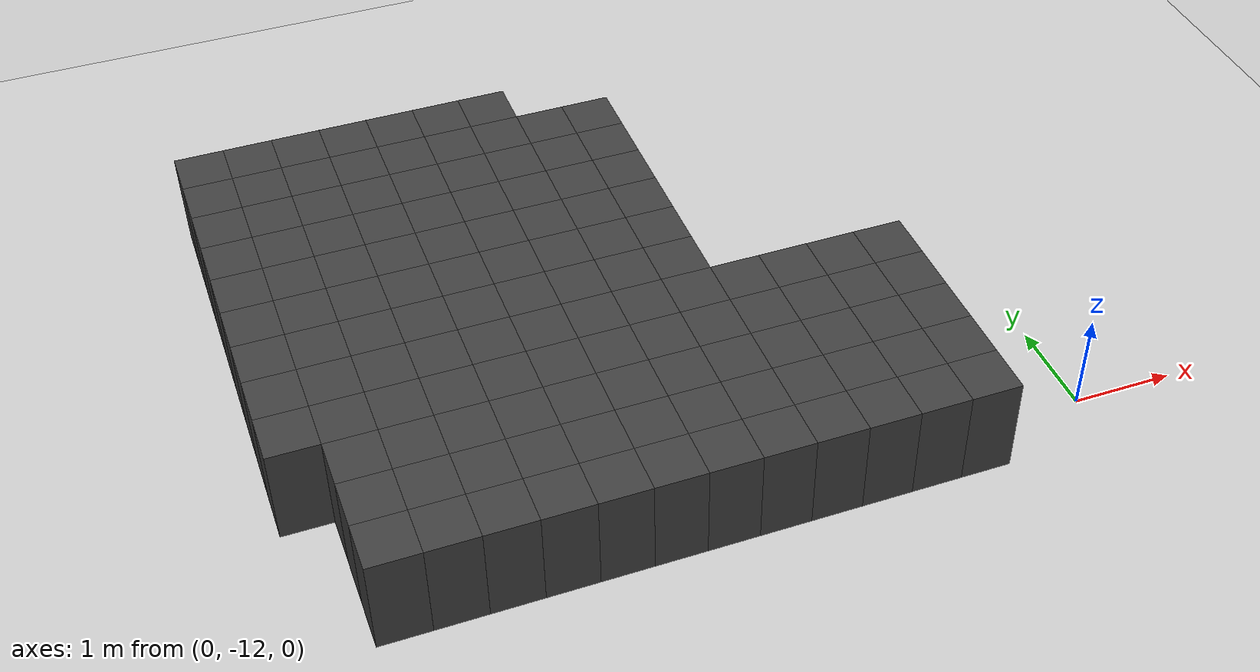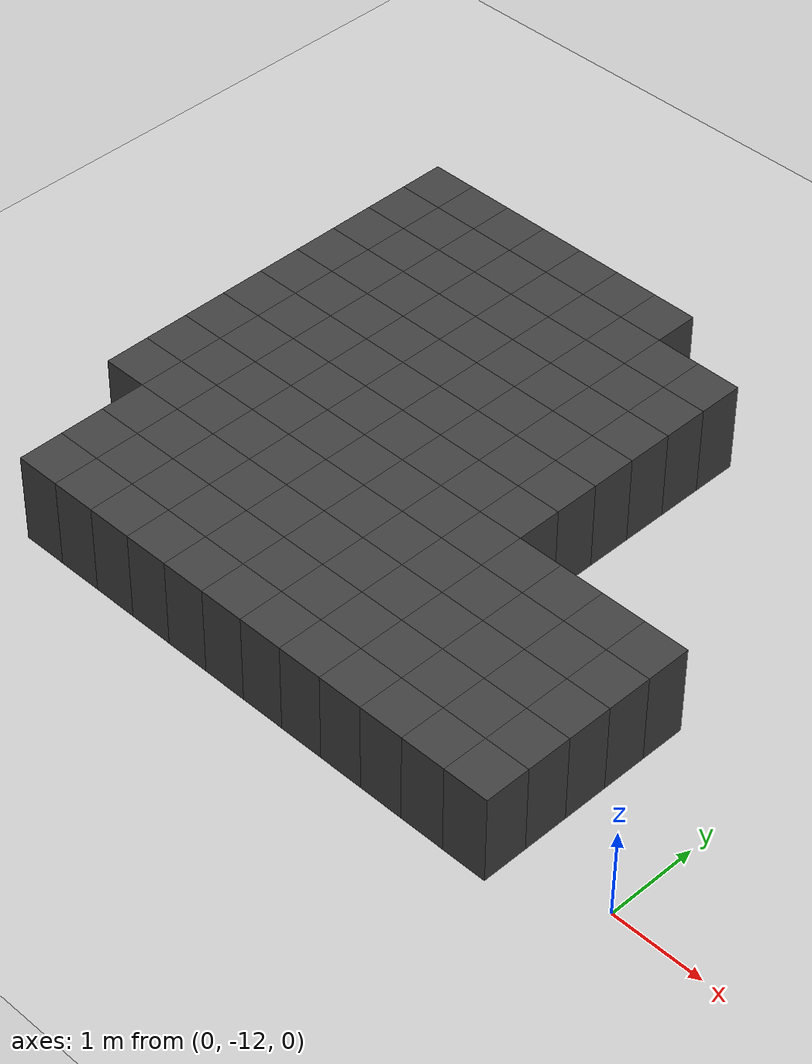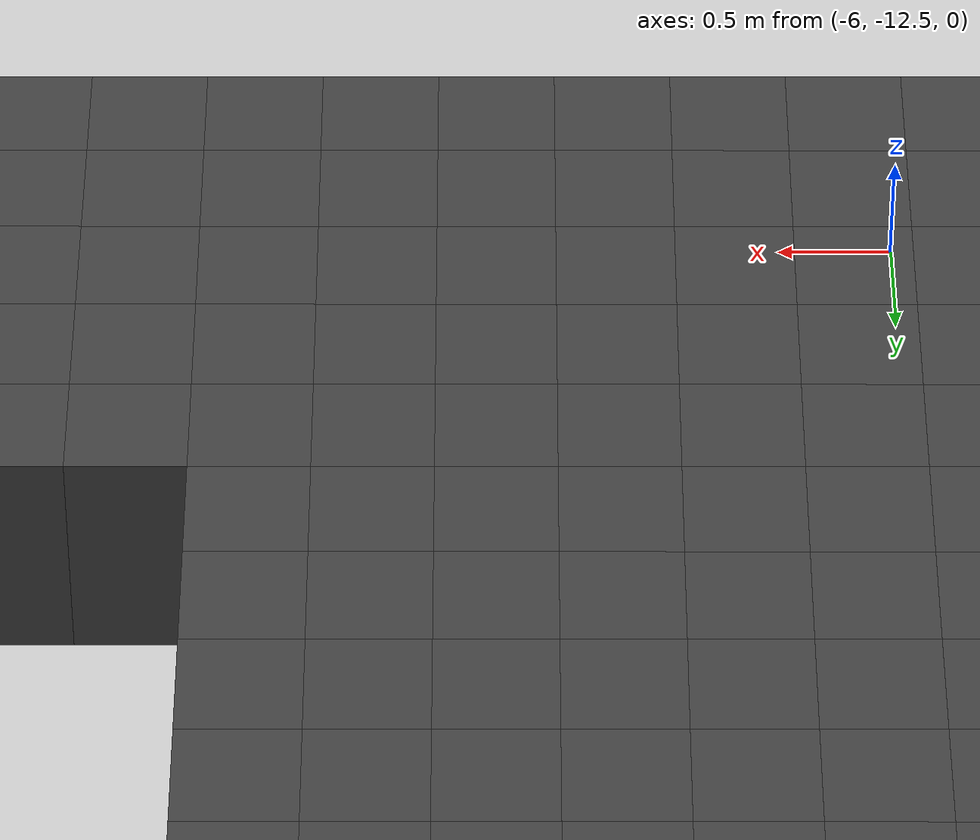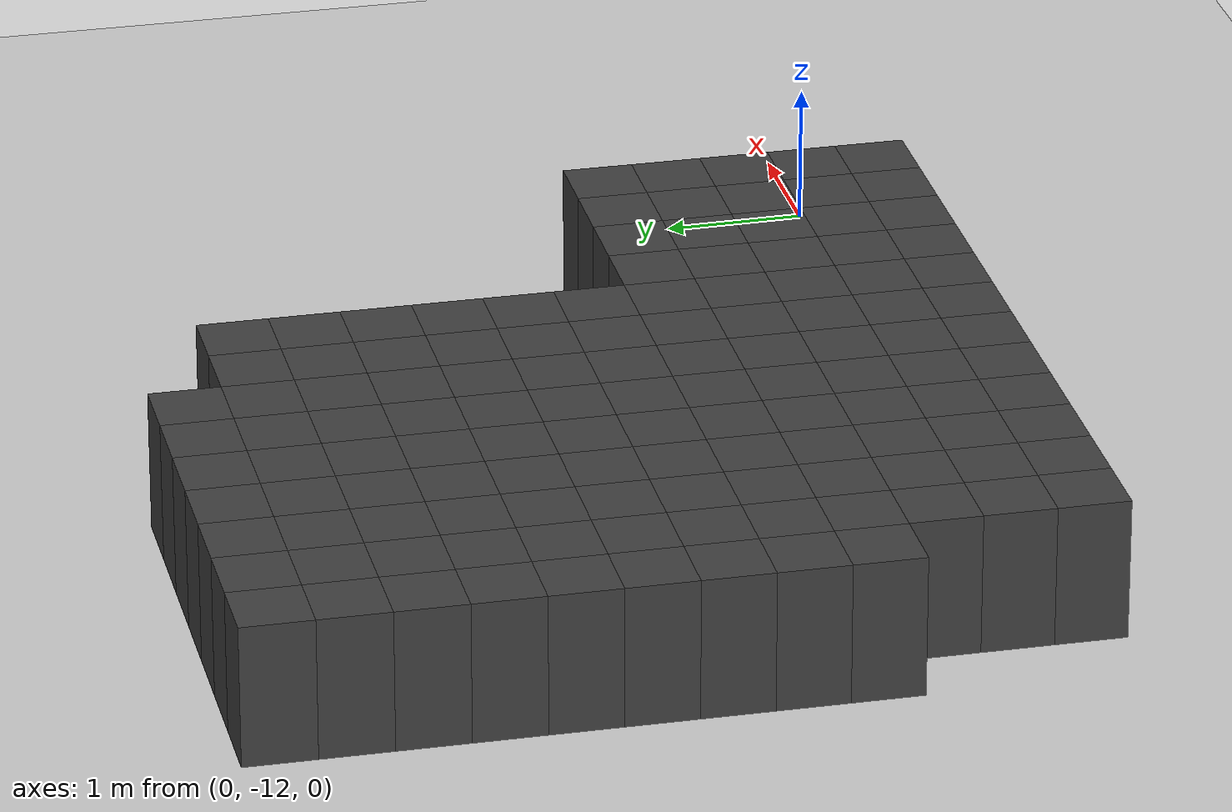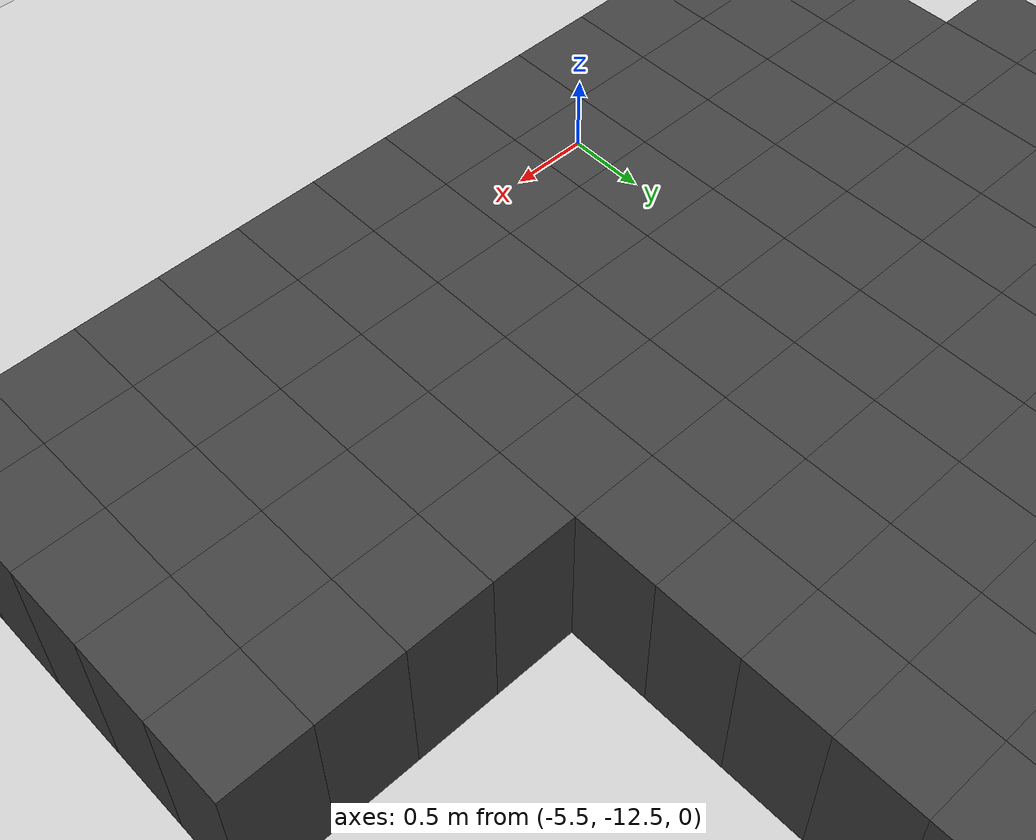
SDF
<sdf version="1.7">
 <world name="map_10726">
  <model name="ground_plane">
   <static>true</static>
   <link name="link">
    <collision name="collision">
     <geometry><plane><normal>0 0 1</normal><size>200 200</size></plane></geometry>
    </collision>
    <visual name="visual">
     <geometry><plane><normal>0 0 1</normal><size>200 200</size></plane></geometry>
     <material><ambient>0.8 0.8 0.8 1</ambient><diffuse>0.8 0.8 0.8 1</diffuse></material>
    </visual>
   </link>
  </model>
  <model name="maze_environment">
   <static>true</static>
   <link name="wall_1606">
    <pose>-7.250 -6.750 0.500 0 0 0</pose>
    <collision name="col"><geometry><box><size>0.5 0.5 1.0</size></box></geometry></collision>
    <visual name="vis">
     <geometry><box><size>0.5 0.5 1.0</size></box></geometry>
     <material><ambient>0.15 0.15 0.15 1</ambient><diffuse>0.25 0.25 0.25 1</diffuse></material>
    </visual>
   </link>
   <link name="wall_1607">
    <pose>-6.750 -6.750 0.500 0 0 0</pose>
    <collision name="col"><geometry><box><size>0.5 0.5 1.0</size></box></geometry></collision>
    <visual name="vis">
     <geometry><box><size>0.5 0.5 1.0</size></box></geometry>
     <material><ambient>0.15 0.15 0.15 1</ambient><diffuse>0.25 0.25 0.25 1</diffuse></material>
    </visual>
   </link>
   <link name="wall_1608">
    <pose>-6.250 -6.750 0.500 0 0 0</pose>
    <collision name="col"><geometry><box><size>0.5 0.5 1.0</size></box></geometry></collision>
    <visual name="vis">
     <geometry><box><size>0.5 0.5 1.0</size></box></geometry>
     <material><ambient>0.15 0.15 0.15 1</ambient><diffuse>0.25 0.25 0.25 1</diffuse></material>
    </visual>
   </link>
   <link name="wall_1609">
    <pose>-5.750 -6.750 0.500 0 0 0</pose>
    <collision name="col"><geometry><box><size>0.5 0.5 1.0</size></box></geometry></collision>
    <visual name="vis">
     <geometry><box><size>0.5 0.5 1.0</size></box></geometry>
     <material><ambient>0.15 0.15 0.15 1</ambient><diffuse>0.25 0.25 0.25 1</diffuse></material>
    </visual>
   </link>
   <link name="wall_1610">
    <pose>-5.250 -6.750 0.500 0 0 0</pose>
    <collision name="col"><geometry><box><size>0.5 0.5 1.0</size></box></geometry></collision>
    <visual name="vis">
     <geometry><box><size>0.5 0.5 1.0</size></box></geometry>
     <material><ambient>0.15 0.15 0.15 1</ambient><diffuse>0.25 0.25 0.25 1</diffuse></material>
    </visual>
   </link>
   <link name="wall_1611">
    <pose>-4.750 -6.750 0.500 0 0 0</pose>
    <collision name="col"><geometry><box><size>0.5 0.5 1.0</size></box></geometry></collision>
    <visual name="vis">
     <geometry><box><size>0.5 0.5 1.0</size></box></geometry>
     <material><ambient>0.15 0.15 0.15 1</ambient><diffuse>0.25 0.25 0.25 1</diffuse></material>
    </visual>
   </link>
   <link name="wall_1612">
    <pose>-4.250 -6.750 0.500 0 0 0</pose>
    <collision name="col"><geometry><box><size>0.5 0.5 1.0</size></box></geometry></collision>
    <visual name="vis">
     <geometry><box><size>0.5 0.5 1.0</size></box></geometry>
     <material><ambient>0.15 0.15 0.15 1</ambient><diffuse>0.25 0.25 0.25 1</diffuse></material>
    </visual>
   </link>
   <link name="wall_1654">
    <pose>-7.250 -7.250 0.500 0 0 0</pose>
    <collision name="col"><geometry><box><size>0.5 0.5 1.0</size></box></geometry></collision>
    <visual name="vis">
     <geometry><box><size>0.5 0.5 1.0</size></box></geometry>
     <material><ambient>0.15 0.15 0.15 1</ambient><diffuse>0.25 0.25 0.25 1</diffuse></material>
    </visual>
   </link>
   <link name="wall_1655">
    <pose>-6.750 -7.250 0.500 0 0 0</pose>
    <collision name="col"><geometry><box><size>0.5 0.5 1.0</size></box></geometry></collision>
    <visual name="vis">
     <geometry><box><size>0.5 0.5 1.0</size></box></geometry>
     <material><ambient>0.15 0.15 0.15 1</ambient><diffuse>0.25 0.25 0.25 1</diffuse></material>
    </visual>
   </link>
   <link name="wall_1656">
    <pose>-6.250 -7.250 0.500 0 0 0</pose>
    <collision name="col"><geometry><box><size>0.5 0.5 1.0</size></box></geometry></collision>
    <visual name="vis">
     <geometry><box><size>0.5 0.5 1.0</size></box></geometry>
     <material><ambient>0.15 0.15 0.15 1</ambient><diffuse>0.25 0.25 0.25 1</diffuse></material>
    </visual>
   </link>
   <link name="wall_1657">
    <pose>-5.750 -7.250 0.500 0 0 0</pose>
    <collision name="col"><geometry><box><size>0.5 0.5 1.0</size></box></geometry></collision>
    <visual name="vis">
     <geometry><box><size>0.5 0.5 1.0</size></box></geometry>
     <material><ambient>0.15 0.15 0.15 1</ambient><diffuse>0.25 0.25 0.25 1</diffuse></material>
    </visual>
   </link>
   <link name="wall_1658">
    <pose>-5.250 -7.250 0.500 0 0 0</pose>
    <collision name="col"><geometry><box><size>0.5 0.5 1.0</size></box></geometry></collision>
    <visual name="vis">
     <geometry><box><size>0.5 0.5 1.0</size></box></geometry>
     <material><ambient>0.15 0.15 0.15 1</ambient><diffuse>0.25 0.25 0.25 1</diffuse></material>
    </visual>
   </link>
   <link name="wall_1659">
    <pose>-4.750 -7.250 0.500 0 0 0</pose>
    <collision name="col"><geometry><box><size>0.5 0.5 1.0</size></box></geometry></collision>
    <visual name="vis">
     <geometry><box><size>0.5 0.5 1.0</size></box></geometry>
     <material><ambient>0.15 0.15 0.15 1</ambient><diffuse>0.25 0.25 0.25 1</diffuse></material>
    </visual>
   </link>
   <link name="wall_1660">
    <pose>-4.250 -7.250 0.500 0 0 0</pose>
    <collision name="col"><geometry><box><size>0.5 0.5 1.0</size></box></geometry></collision>
    <visual name="vis">
     <geometry><box><size>0.5 0.5 1.0</size></box></geometry>
     <material><ambient>0.15 0.15 0.15 1</ambient><diffuse>0.25 0.25 0.25 1</diffuse></material>
    </visual>
   </link>
   <link name="wall_1661">
    <pose>-3.750 -7.250 0.500 0 0 0</pose>
    <collision name="col"><geometry><box><size>0.5 0.5 1.0</size></box></geometry></collision>
    <visual name="vis">
     <geometry><box><size>0.5 0.5 1.0</size></box></geometry>
     <material><ambient>0.15 0.15 0.15 1</ambient><diffuse>0.25 0.25 0.25 1</diffuse></material>
    </visual>
   </link>
   <link name="wall_1662">
    <pose>-3.250 -7.250 0.500 0 0 0</pose>
    <collision name="col"><geometry><box><size>0.5 0.5 1.0</size></box></geometry></collision>
    <visual name="vis">
     <geometry><box><size>0.5 0.5 1.0</size></box></geometry>
     <material><ambient>0.15 0.15 0.15 1</ambient><diffuse>0.25 0.25 0.25 1</diffuse></material>
    </visual>
   </link>
   <link name="wall_1691">
    <pose>-7.250 -7.750 0.500 0 0 0</pose>
    <collision name="col"><geometry><box><size>0.5 0.5 1.0</size></box></geometry></collision>
    <visual name="vis">
     <geometry><box><size>0.5 0.5 1.0</size></box></geometry>
     <material><ambient>0.15 0.15 0.15 1</ambient><diffuse>0.25 0.25 0.25 1</diffuse></material>
    </visual>
   </link>
   <link name="wall_1692">
    <pose>-6.750 -7.750 0.500 0 0 0</pose>
    <collision name="col"><geometry><box><size>0.5 0.5 1.0</size></box></geometry></collision>
    <visual name="vis">
     <geometry><box><size>0.5 0.5 1.0</size></box></geometry>
     <material><ambient>0.15 0.15 0.15 1</ambient><diffuse>0.25 0.25 0.25 1</diffuse></material>
    </visual>
   </link>
   <link name="wall_1693">
    <pose>-6.250 -7.750 0.500 0 0 0</pose>
    <collision name="col"><geometry><box><size>0.5 0.5 1.0</size></box></geometry></collision>
    <visual name="vis">
     <geometry><box><size>0.5 0.5 1.0</size></box></geometry>
     <material><ambient>0.15 0.15 0.15 1</ambient><diffuse>0.25 0.25 0.25 1</diffuse></material>
    </visual>
   </link>
   <link name="wall_1694">
    <pose>-5.750 -7.750 0.500 0 0 0</pose>
    <collision name="col"><geometry><box><size>0.5 0.5 1.0</size></box></geometry></collision>
    <visual name="vis">
     <geometry><box><size>0.5 0.5 1.0</size></box></geometry>
     <material><ambient>0.15 0.15 0.15 1</ambient><diffuse>0.25 0.25 0.25 1</diffuse></material>
    </visual>
   </link>
   <link name="wall_1695">
    <pose>-5.250 -7.750 0.500 0 0 0</pose>
    <collision name="col"><geometry><box><size>0.5 0.5 1.0</size></box></geometry></collision>
    <visual name="vis">
     <geometry><box><size>0.5 0.5 1.0</size></box></geometry>
     <material><ambient>0.15 0.15 0.15 1</ambient><diffuse>0.25 0.25 0.25 1</diffuse></material>
    </visual>
   </link>
   <link name="wall_1696">
    <pose>-4.750 -7.750 0.500 0 0 0</pose>
    <collision name="col"><geometry><box><size>0.5 0.5 1.0</size></box></geometry></collision>
    <visual name="vis">
     <geometry><box><size>0.5 0.5 1.0</size></box></geometry>
     <material><ambient>0.15 0.15 0.15 1</ambient><diffuse>0.25 0.25 0.25 1</diffuse></material>
    </visual>
   </link>
   <link name="wall_1697">
    <pose>-4.250 -7.750 0.500 0 0 0</pose>
    <collision name="col"><geometry><box><size>0.5 0.5 1.0</size></box></geometry></collision>
    <visual name="vis">
     <geometry><box><size>0.5 0.5 1.0</size></box></geometry>
     <material><ambient>0.15 0.15 0.15 1</ambient><diffuse>0.25 0.25 0.25 1</diffuse></material>
    </visual>
   </link>
   <link name="wall_1698">
    <pose>-3.750 -7.750 0.500 0 0 0</pose>
    <collision name="col"><geometry><box><size>0.5 0.5 1.0</size></box></geometry></collision>
    <visual name="vis">
     <geometry><box><size>0.5 0.5 1.0</size></box></geometry>
     <material><ambient>0.15 0.15 0.15 1</ambient><diffuse>0.25 0.25 0.25 1</diffuse></material>
    </visual>
   </link>
   <link name="wall_1699">
    <pose>-3.250 -7.750 0.500 0 0 0</pose>
    <collision name="col"><geometry><box><size>0.5 0.5 1.0</size></box></geometry></collision>
    <visual name="vis">
     <geometry><box><size>0.5 0.5 1.0</size></box></geometry>
     <material><ambient>0.15 0.15 0.15 1</ambient><diffuse>0.25 0.25 0.25 1</diffuse></material>
    </visual>
   </link>
   <link name="wall_1728">
    <pose>-7.250 -8.250 0.500 0 0 0</pose>
    <collision name="col"><geometry><box><size>0.5 0.5 1.0</size></box></geometry></collision>
    <visual name="vis">
     <geometry><box><size>0.5 0.5 1.0</size></box></geometry>
     <material><ambient>0.15 0.15 0.15 1</ambient><diffuse>0.25 0.25 0.25 1</diffuse></material>
    </visual>
   </link>
   <link name="wall_1729">
    <pose>-6.750 -8.250 0.500 0 0 0</pose>
    <collision name="col"><geometry><box><size>0.5 0.5 1.0</size></box></geometry></collision>
    <visual name="vis">
     <geometry><box><size>0.5 0.5 1.0</size></box></geometry>
     <material><ambient>0.15 0.15 0.15 1</ambient><diffuse>0.25 0.25 0.25 1</diffuse></material>
    </visual>
   </link>
   <link name="wall_1730">
    <pose>-6.250 -8.250 0.500 0 0 0</pose>
    <collision name="col"><geometry><box><size>0.5 0.5 1.0</size></box></geometry></collision>
    <visual name="vis">
     <geometry><box><size>0.5 0.5 1.0</size></box></geometry>
     <material><ambient>0.15 0.15 0.15 1</ambient><diffuse>0.25 0.25 0.25 1</diffuse></material>
    </visual>
   </link>
   <link name="wall_1731">
    <pose>-5.750 -8.250 0.500 0 0 0</pose>
    <collision name="col"><geometry><box><size>0.5 0.5 1.0</size></box></geometry></collision>
    <visual name="vis">
     <geometry><box><size>0.5 0.5 1.0</size></box></geometry>
     <material><ambient>0.15 0.15 0.15 1</ambient><diffuse>0.25 0.25 0.25 1</diffuse></material>
    </visual>
   </link>
   <link name="wall_1732">
    <pose>-5.250 -8.250 0.500 0 0 0</pose>
    <collision name="col"><geometry><box><size>0.5 0.5 1.0</size></box></geometry></collision>
    <visual name="vis">
     <geometry><box><size>0.5 0.5 1.0</size></box></geometry>
     <material><ambient>0.15 0.15 0.15 1</ambient><diffuse>0.25 0.25 0.25 1</diffuse></material>
    </visual>
   </link>
   <link name="wall_1733">
    <pose>-4.750 -8.250 0.500 0 0 0</pose>
    <collision name="col"><geometry><box><size>0.5 0.5 1.0</size></box></geometry></collision>
    <visual name="vis">
     <geometry><box><size>0.5 0.5 1.0</size></box></geometry>
     <material><ambient>0.15 0.15 0.15 1</ambient><diffuse>0.25 0.25 0.25 1</diffuse></material>
    </visual>
   </link>
   <link name="wall_1734">
    <pose>-4.250 -8.250 0.500 0 0 0</pose>
    <collision name="col"><geometry><box><size>0.5 0.5 1.0</size></box></geometry></collision>
    <visual name="vis">
     <geometry><box><size>0.5 0.5 1.0</size></box></geometry>
     <material><ambient>0.15 0.15 0.15 1</ambient><diffuse>0.25 0.25 0.25 1</diffuse></material>
    </visual>
   </link>
   <link name="wall_1735">
    <pose>-3.750 -8.250 0.500 0 0 0</pose>
    <collision name="col"><geometry><box><size>0.5 0.5 1.0</size></box></geometry></collision>
    <visual name="vis">
     <geometry><box><size>0.5 0.5 1.0</size></box></geometry>
     <material><ambient>0.15 0.15 0.15 1</ambient><diffuse>0.25 0.25 0.25 1</diffuse></material>
    </visual>
   </link>
   <link name="wall_1736">
    <pose>-3.250 -8.250 0.500 0 0 0</pose>
    <collision name="col"><geometry><box><size>0.5 0.5 1.0</size></box></geometry></collision>
    <visual name="vis">
     <geometry><box><size>0.5 0.5 1.0</size></box></geometry>
     <material><ambient>0.15 0.15 0.15 1</ambient><diffuse>0.25 0.25 0.25 1</diffuse></material>
    </visual>
   </link>
   <link name="wall_1765">
    <pose>-7.250 -8.750 0.500 0 0 0</pose>
    <collision name="col"><geometry><box><size>0.5 0.5 1.0</size></box></geometry></collision>
    <visual name="vis">
     <geometry><box><size>0.5 0.5 1.0</size></box></geometry>
     <material><ambient>0.15 0.15 0.15 1</ambient><diffuse>0.25 0.25 0.25 1</diffuse></material>
    </visual>
   </link>
   <link name="wall_1766">
    <pose>-6.750 -8.750 0.500 0 0 0</pose>
    <collision name="col"><geometry><box><size>0.5 0.5 1.0</size></box></geometry></collision>
    <visual name="vis">
     <geometry><box><size>0.5 0.5 1.0</size></box></geometry>
     <material><ambient>0.15 0.15 0.15 1</ambient><diffuse>0.25 0.25 0.25 1</diffuse></material>
    </visual>
   </link>
   <link name="wall_1767">
    <pose>-6.250 -8.750 0.500 0 0 0</pose>
    <collision name="col"><geometry><box><size>0.5 0.5 1.0</size></box></geometry></collision>
    <visual name="vis">
     <geometry><box><size>0.5 0.5 1.0</size></box></geometry>
     <material><ambient>0.15 0.15 0.15 1</ambient><diffuse>0.25 0.25 0.25 1</diffuse></material>
    </visual>
   </link>
   <link name="wall_1768">
    <pose>-5.750 -8.750 0.500 0 0 0</pose>
    <collision name="col"><geometry><box><size>0.5 0.5 1.0</size></box></geometry></collision>
    <visual name="vis">
     <geometry><box><size>0.5 0.5 1.0</size></box></geometry>
     <material><ambient>0.15 0.15 0.15 1</ambient><diffuse>0.25 0.25 0.25 1</diffuse></material>
    </visual>
   </link>
   <link name="wall_1769">
    <pose>-5.250 -8.750 0.500 0 0 0</pose>
    <collision name="col"><geometry><box><size>0.5 0.5 1.0</size></box></geometry></collision>
    <visual name="vis">
     <geometry><box><size>0.5 0.5 1.0</size></box></geometry>
     <material><ambient>0.15 0.15 0.15 1</ambient><diffuse>0.25 0.25 0.25 1</diffuse></material>
    </visual>
   </link>
   <link name="wall_1770">
    <pose>-4.750 -8.750 0.500 0 0 0</pose>
    <collision name="col"><geometry><box><size>0.5 0.5 1.0</size></box></geometry></collision>
    <visual name="vis">
     <geometry><box><size>0.5 0.5 1.0</size></box></geometry>
     <material><ambient>0.15 0.15 0.15 1</ambient><diffuse>0.25 0.25 0.25 1</diffuse></material>
    </visual>
   </link>
   <link name="wall_1771">
    <pose>-4.250 -8.750 0.500 0 0 0</pose>
    <collision name="col"><geometry><box><size>0.5 0.5 1.0</size></box></geometry></collision>
    <visual name="vis">
     <geometry><box><size>0.5 0.5 1.0</size></box></geometry>
     <material><ambient>0.15 0.15 0.15 1</ambient><diffuse>0.25 0.25 0.25 1</diffuse></material>
    </visual>
   </link>
   <link name="wall_1772">
    <pose>-3.750 -8.750 0.500 0 0 0</pose>
    <collision name="col"><geometry><box><size>0.5 0.5 1.0</size></box></geometry></collision>
    <visual name="vis">
     <geometry><box><size>0.5 0.5 1.0</size></box></geometry>
     <material><ambient>0.15 0.15 0.15 1</ambient><diffuse>0.25 0.25 0.25 1</diffuse></material>
    </visual>
   </link>
   <link name="wall_1773">
    <pose>-3.250 -8.750 0.500 0 0 0</pose>
    <collision name="col"><geometry><box><size>0.5 0.5 1.0</size></box></geometry></collision>
    <visual name="vis">
     <geometry><box><size>0.5 0.5 1.0</size></box></geometry>
     <material><ambient>0.15 0.15 0.15 1</ambient><diffuse>0.25 0.25 0.25 1</diffuse></material>
    </visual>
   </link>
   <link name="wall_1801">
    <pose>-7.250 -9.250 0.500 0 0 0</pose>
    <collision name="col"><geometry><box><size>0.5 0.5 1.0</size></box></geometry></collision>
    <visual name="vis">
     <geometry><box><size>0.5 0.5 1.0</size></box></geometry>
     <material><ambient>0.15 0.15 0.15 1</ambient><diffuse>0.25 0.25 0.25 1</diffuse></material>
    </visual>
   </link>
   <link name="wall_1802">
    <pose>-6.750 -9.250 0.500 0 0 0</pose>
    <collision name="col"><geometry><box><size>0.5 0.5 1.0</size></box></geometry></collision>
    <visual name="vis">
     <geometry><box><size>0.5 0.5 1.0</size></box></geometry>
     <material><ambient>0.15 0.15 0.15 1</ambient><diffuse>0.25 0.25 0.25 1</diffuse></material>
    </visual>
   </link>
   <link name="wall_1803">
    <pose>-6.250 -9.250 0.500 0 0 0</pose>
    <collision name="col"><geometry><box><size>0.5 0.5 1.0</size></box></geometry></collision>
    <visual name="vis">
     <geometry><box><size>0.5 0.5 1.0</size></box></geometry>
     <material><ambient>0.15 0.15 0.15 1</ambient><diffuse>0.25 0.25 0.25 1</diffuse></material>
    </visual>
   </link>
   <link name="wall_1804">
    <pose>-5.750 -9.250 0.500 0 0 0</pose>
    <collision name="col"><geometry><box><size>0.5 0.5 1.0</size></box></geometry></collision>
    <visual name="vis">
     <geometry><box><size>0.5 0.5 1.0</size></box></geometry>
     <material><ambient>0.15 0.15 0.15 1</ambient><diffuse>0.25 0.25 0.25 1</diffuse></material>
    </visual>
   </link>
   <link name="wall_1805">
    <pose>-5.250 -9.250 0.500 0 0 0</pose>
    <collision name="col"><geometry><box><size>0.5 0.5 1.0</size></box></geometry></collision>
    <visual name="vis">
     <geometry><box><size>0.5 0.5 1.0</size></box></geometry>
     <material><ambient>0.15 0.15 0.15 1</ambient><diffuse>0.25 0.25 0.25 1</diffuse></material>
    </visual>
   </link>
   <link name="wall_1806">
    <pose>-4.750 -9.250 0.500 0 0 0</pose>
    <collision name="col"><geometry><box><size>0.5 0.5 1.0</size></box></geometry></collision>
    <visual name="vis">
     <geometry><box><size>0.5 0.5 1.0</size></box></geometry>
     <material><ambient>0.15 0.15 0.15 1</ambient><diffuse>0.25 0.25 0.25 1</diffuse></material>
    </visual>
   </link>
   <link name="wall_1807">
    <pose>-4.250 -9.250 0.500 0 0 0</pose>
    <collision name="col"><geometry><box><size>0.5 0.5 1.0</size></box></geometry></collision>
    <visual name="vis">
     <geometry><box><size>0.5 0.5 1.0</size></box></geometry>
     <material><ambient>0.15 0.15 0.15 1</ambient><diffuse>0.25 0.25 0.25 1</diffuse></material>
    </visual>
   </link>
   <link name="wall_1808">
    <pose>-3.750 -9.250 0.500 0 0 0</pose>
    <collision name="col"><geometry><box><size>0.5 0.5 1.0</size></box></geometry></collision>
    <visual name="vis">
     <geometry><box><size>0.5 0.5 1.0</size></box></geometry>
     <material><ambient>0.15 0.15 0.15 1</ambient><diffuse>0.25 0.25 0.25 1</diffuse></material>
    </visual>
   </link>
   <link name="wall_1809">
    <pose>-3.250 -9.250 0.500 0 0 0</pose>
    <collision name="col"><geometry><box><size>0.5 0.5 1.0</size></box></geometry></collision>
    <visual name="vis">
     <geometry><box><size>0.5 0.5 1.0</size></box></geometry>
     <material><ambient>0.15 0.15 0.15 1</ambient><diffuse>0.25 0.25 0.25 1</diffuse></material>
    </visual>
   </link>
   <link name="wall_1839">
    <pose>-7.250 -9.750 0.500 0 0 0</pose>
    <collision name="col"><geometry><box><size>0.5 0.5 1.0</size></box></geometry></collision>
    <visual name="vis">
     <geometry><box><size>0.5 0.5 1.0</size></box></geometry>
     <material><ambient>0.15 0.15 0.15 1</ambient><diffuse>0.25 0.25 0.25 1</diffuse></material>
    </visual>
   </link>
   <link name="wall_1840">
    <pose>-6.750 -9.750 0.500 0 0 0</pose>
    <collision name="col"><geometry><box><size>0.5 0.5 1.0</size></box></geometry></collision>
    <visual name="vis">
     <geometry><box><size>0.5 0.5 1.0</size></box></geometry>
     <material><ambient>0.15 0.15 0.15 1</ambient><diffuse>0.25 0.25 0.25 1</diffuse></material>
    </visual>
   </link>
   <link name="wall_1841">
    <pose>-6.250 -9.750 0.500 0 0 0</pose>
    <collision name="col"><geometry><box><size>0.5 0.5 1.0</size></box></geometry></collision>
    <visual name="vis">
     <geometry><box><size>0.5 0.5 1.0</size></box></geometry>
     <material><ambient>0.15 0.15 0.15 1</ambient><diffuse>0.25 0.25 0.25 1</diffuse></material>
    </visual>
   </link>
   <link name="wall_1842">
    <pose>-5.750 -9.750 0.500 0 0 0</pose>
    <collision name="col"><geometry><box><size>0.5 0.5 1.0</size></box></geometry></collision>
    <visual name="vis">
     <geometry><box><size>0.5 0.5 1.0</size></box></geometry>
     <material><ambient>0.15 0.15 0.15 1</ambient><diffuse>0.25 0.25 0.25 1</diffuse></material>
    </visual>
   </link>
   <link name="wall_1843">
    <pose>-5.250 -9.750 0.500 0 0 0</pose>
    <collision name="col"><geometry><box><size>0.5 0.5 1.0</size></box></geometry></collision>
    <visual name="vis">
     <geometry><box><size>0.5 0.5 1.0</size></box></geometry>
     <material><ambient>0.15 0.15 0.15 1</ambient><diffuse>0.25 0.25 0.25 1</diffuse></material>
    </visual>
   </link>
   <link name="wall_1844">
    <pose>-4.750 -9.750 0.500 0 0 0</pose>
    <collision name="col"><geometry><box><size>0.5 0.5 1.0</size></box></geometry></collision>
    <visual name="vis">
     <geometry><box><size>0.5 0.5 1.0</size></box></geometry>
     <material><ambient>0.15 0.15 0.15 1</ambient><diffuse>0.25 0.25 0.25 1</diffuse></material>
    </visual>
   </link>
   <link name="wall_1845">
    <pose>-4.250 -9.750 0.500 0 0 0</pose>
    <collision name="col"><geometry><box><size>0.5 0.5 1.0</size></box></geometry></collision>
    <visual name="vis">
     <geometry><box><size>0.5 0.5 1.0</size></box></geometry>
     <material><ambient>0.15 0.15 0.15 1</ambient><diffuse>0.25 0.25 0.25 1</diffuse></material>
    </visual>
   </link>
   <link name="wall_1846">
    <pose>-3.750 -9.750 0.500 0 0 0</pose>
    <collision name="col"><geometry><box><size>0.5 0.5 1.0</size></box></geometry></collision>
    <visual name="vis">
     <geometry><box><size>0.5 0.5 1.0</size></box></geometry>
     <material><ambient>0.15 0.15 0.15 1</ambient><diffuse>0.25 0.25 0.25 1</diffuse></material>
    </visual>
   </link>
   <link name="wall_1847">
    <pose>-3.250 -9.750 0.500 0 0 0</pose>
    <collision name="col"><geometry><box><size>0.5 0.5 1.0</size></box></geometry></collision>
    <visual name="vis">
     <geometry><box><size>0.5 0.5 1.0</size></box></geometry>
     <material><ambient>0.15 0.15 0.15 1</ambient><diffuse>0.25 0.25 0.25 1</diffuse></material>
    </visual>
   </link>
   <link name="wall_1877">
    <pose>-7.250 -10.250 0.500 0 0 0</pose>
    <collision name="col"><geometry><box><size>0.5 0.5 1.0</size></box></geometry></collision>
    <visual name="vis">
     <geometry><box><size>0.5 0.5 1.0</size></box></geometry>
     <material><ambient>0.15 0.15 0.15 1</ambient><diffuse>0.25 0.25 0.25 1</diffuse></material>
    </visual>
   </link>
   <link name="wall_1878">
    <pose>-6.750 -10.250 0.500 0 0 0</pose>
    <collision name="col"><geometry><box><size>0.5 0.5 1.0</size></box></geometry></collision>
    <visual name="vis">
     <geometry><box><size>0.5 0.5 1.0</size></box></geometry>
     <material><ambient>0.15 0.15 0.15 1</ambient><diffuse>0.25 0.25 0.25 1</diffuse></material>
    </visual>
   </link>
   <link name="wall_1879">
    <pose>-6.250 -10.250 0.500 0 0 0</pose>
    <collision name="col"><geometry><box><size>0.5 0.5 1.0</size></box></geometry></collision>
    <visual name="vis">
     <geometry><box><size>0.5 0.5 1.0</size></box></geometry>
     <material><ambient>0.15 0.15 0.15 1</ambient><diffuse>0.25 0.25 0.25 1</diffuse></material>
    </visual>
   </link>
   <link name="wall_1880">
    <pose>-5.750 -10.250 0.500 0 0 0</pose>
    <collision name="col"><geometry><box><size>0.5 0.5 1.0</size></box></geometry></collision>
    <visual name="vis">
     <geometry><box><size>0.5 0.5 1.0</size></box></geometry>
     <material><ambient>0.15 0.15 0.15 1</ambient><diffuse>0.25 0.25 0.25 1</diffuse></material>
    </visual>
   </link>
   <link name="wall_1881">
    <pose>-5.250 -10.250 0.500 0 0 0</pose>
    <collision name="col"><geometry><box><size>0.5 0.5 1.0</size></box></geometry></collision>
    <visual name="vis">
     <geometry><box><size>0.5 0.5 1.0</size></box></geometry>
     <material><ambient>0.15 0.15 0.15 1</ambient><diffuse>0.25 0.25 0.25 1</diffuse></material>
    </visual>
   </link>
   <link name="wall_1882">
    <pose>-4.750 -10.250 0.500 0 0 0</pose>
    <collision name="col"><geometry><box><size>0.5 0.5 1.0</size></box></geometry></collision>
    <visual name="vis">
     <geometry><box><size>0.5 0.5 1.0</size></box></geometry>
     <material><ambient>0.15 0.15 0.15 1</ambient><diffuse>0.25 0.25 0.25 1</diffuse></material>
    </visual>
   </link>
   <link name="wall_1883">
    <pose>-4.250 -10.250 0.500 0 0 0</pose>
    <collision name="col"><geometry><box><size>0.5 0.5 1.0</size></box></geometry></collision>
    <visual name="vis">
     <geometry><box><size>0.5 0.5 1.0</size></box></geometry>
     <material><ambient>0.15 0.15 0.15 1</ambient><diffuse>0.25 0.25 0.25 1</diffuse></material>
    </visual>
   </link>
   <link name="wall_1884">
    <pose>-3.750 -10.250 0.500 0 0 0</pose>
    <collision name="col"><geometry><box><size>0.5 0.5 1.0</size></box></geometry></collision>
    <visual name="vis">
     <geometry><box><size>0.5 0.5 1.0</size></box></geometry>
     <material><ambient>0.15 0.15 0.15 1</ambient><diffuse>0.25 0.25 0.25 1</diffuse></material>
    </visual>
   </link>
   <link name="wall_1885">
    <pose>-3.250 -10.250 0.500 0 0 0</pose>
    <collision name="col"><geometry><box><size>0.5 0.5 1.0</size></box></geometry></collision>
    <visual name="vis">
     <geometry><box><size>0.5 0.5 1.0</size></box></geometry>
     <material><ambient>0.15 0.15 0.15 1</ambient><diffuse>0.25 0.25 0.25 1</diffuse></material>
    </visual>
   </link>
   <link name="wall_1886">
    <pose>-2.750 -10.250 0.500 0 0 0</pose>
    <collision name="col"><geometry><box><size>0.5 0.5 1.0</size></box></geometry></collision>
    <visual name="vis">
     <geometry><box><size>0.5 0.5 1.0</size></box></geometry>
     <material><ambient>0.15 0.15 0.15 1</ambient><diffuse>0.25 0.25 0.25 1</diffuse></material>
    </visual>
   </link>
   <link name="wall_1887">
    <pose>-2.250 -10.250 0.500 0 0 0</pose>
    <collision name="col"><geometry><box><size>0.5 0.5 1.0</size></box></geometry></collision>
    <visual name="vis">
     <geometry><box><size>0.5 0.5 1.0</size></box></geometry>
     <material><ambient>0.15 0.15 0.15 1</ambient><diffuse>0.25 0.25 0.25 1</diffuse></material>
    </visual>
   </link>
   <link name="wall_1888">
    <pose>-1.750 -10.250 0.500 0 0 0</pose>
    <collision name="col"><geometry><box><size>0.5 0.5 1.0</size></box></geometry></collision>
    <visual name="vis">
     <geometry><box><size>0.5 0.5 1.0</size></box></geometry>
     <material><ambient>0.15 0.15 0.15 1</ambient><diffuse>0.25 0.25 0.25 1</diffuse></material>
    </visual>
   </link>
   <link name="wall_1889">
    <pose>-1.250 -10.250 0.500 0 0 0</pose>
    <collision name="col"><geometry><box><size>0.5 0.5 1.0</size></box></geometry></collision>
    <visual name="vis">
     <geometry><box><size>0.5 0.5 1.0</size></box></geometry>
     <material><ambient>0.15 0.15 0.15 1</ambient><diffuse>0.25 0.25 0.25 1</diffuse></material>
    </visual>
   </link>
   <link name="wall_1923">
    <pose>-7.250 -10.750 0.500 0 0 0</pose>
    <collision name="col"><geometry><box><size>0.5 0.5 1.0</size></box></geometry></collision>
    <visual name="vis">
     <geometry><box><size>0.5 0.5 1.0</size></box></geometry>
     <material><ambient>0.15 0.15 0.15 1</ambient><diffuse>0.25 0.25 0.25 1</diffuse></material>
    </visual>
   </link>
   <link name="wall_1924">
    <pose>-6.750 -10.750 0.500 0 0 0</pose>
    <collision name="col"><geometry><box><size>0.5 0.5 1.0</size></box></geometry></collision>
    <visual name="vis">
     <geometry><box><size>0.5 0.5 1.0</size></box></geometry>
     <material><ambient>0.15 0.15 0.15 1</ambient><diffuse>0.25 0.25 0.25 1</diffuse></material>
    </visual>
   </link>
   <link name="wall_1925">
    <pose>-6.250 -10.750 0.500 0 0 0</pose>
    <collision name="col"><geometry><box><size>0.5 0.5 1.0</size></box></geometry></collision>
    <visual name="vis">
     <geometry><box><size>0.5 0.5 1.0</size></box></geometry>
     <material><ambient>0.15 0.15 0.15 1</ambient><diffuse>0.25 0.25 0.25 1</diffuse></material>
    </visual>
   </link>
   <link name="wall_1926">
    <pose>-5.750 -10.750 0.500 0 0 0</pose>
    <collision name="col"><geometry><box><size>0.5 0.5 1.0</size></box></geometry></collision>
    <visual name="vis">
     <geometry><box><size>0.5 0.5 1.0</size></box></geometry>
     <material><ambient>0.15 0.15 0.15 1</ambient><diffuse>0.25 0.25 0.25 1</diffuse></material>
    </visual>
   </link>
   <link name="wall_1927">
    <pose>-5.250 -10.750 0.500 0 0 0</pose>
    <collision name="col"><geometry><box><size>0.5 0.5 1.0</size></box></geometry></collision>
    <visual name="vis">
     <geometry><box><size>0.5 0.5 1.0</size></box></geometry>
     <material><ambient>0.15 0.15 0.15 1</ambient><diffuse>0.25 0.25 0.25 1</diffuse></material>
    </visual>
   </link>
   <link name="wall_1928">
    <pose>-4.750 -10.750 0.500 0 0 0</pose>
    <collision name="col"><geometry><box><size>0.5 0.5 1.0</size></box></geometry></collision>
    <visual name="vis">
     <geometry><box><size>0.5 0.5 1.0</size></box></geometry>
     <material><ambient>0.15 0.15 0.15 1</ambient><diffuse>0.25 0.25 0.25 1</diffuse></material>
    </visual>
   </link>
   <link name="wall_1929">
    <pose>-4.250 -10.750 0.500 0 0 0</pose>
    <collision name="col"><geometry><box><size>0.5 0.5 1.0</size></box></geometry></collision>
    <visual name="vis">
     <geometry><box><size>0.5 0.5 1.0</size></box></geometry>
     <material><ambient>0.15 0.15 0.15 1</ambient><diffuse>0.25 0.25 0.25 1</diffuse></material>
    </visual>
   </link>
   <link name="wall_1930">
    <pose>-3.750 -10.750 0.500 0 0 0</pose>
    <collision name="col"><geometry><box><size>0.5 0.5 1.0</size></box></geometry></collision>
    <visual name="vis">
     <geometry><box><size>0.5 0.5 1.0</size></box></geometry>
     <material><ambient>0.15 0.15 0.15 1</ambient><diffuse>0.25 0.25 0.25 1</diffuse></material>
    </visual>
   </link>
   <link name="wall_1931">
    <pose>-3.250 -10.750 0.500 0 0 0</pose>
    <collision name="col"><geometry><box><size>0.5 0.5 1.0</size></box></geometry></collision>
    <visual name="vis">
     <geometry><box><size>0.5 0.5 1.0</size></box></geometry>
     <material><ambient>0.15 0.15 0.15 1</ambient><diffuse>0.25 0.25 0.25 1</diffuse></material>
    </visual>
   </link>
   <link name="wall_1932">
    <pose>-2.750 -10.750 0.500 0 0 0</pose>
    <collision name="col"><geometry><box><size>0.5 0.5 1.0</size></box></geometry></collision>
    <visual name="vis">
     <geometry><box><size>0.5 0.5 1.0</size></box></geometry>
     <material><ambient>0.15 0.15 0.15 1</ambient><diffuse>0.25 0.25 0.25 1</diffuse></material>
    </visual>
   </link>
   <link name="wall_1933">
    <pose>-2.250 -10.750 0.500 0 0 0</pose>
    <collision name="col"><geometry><box><size>0.5 0.5 1.0</size></box></geometry></collision>
    <visual name="vis">
     <geometry><box><size>0.5 0.5 1.0</size></box></geometry>
     <material><ambient>0.15 0.15 0.15 1</ambient><diffuse>0.25 0.25 0.25 1</diffuse></material>
    </visual>
   </link>
   <link name="wall_1934">
    <pose>-1.750 -10.750 0.500 0 0 0</pose>
    <collision name="col"><geometry><box><size>0.5 0.5 1.0</size></box></geometry></collision>
    <visual name="vis">
     <geometry><box><size>0.5 0.5 1.0</size></box></geometry>
     <material><ambient>0.15 0.15 0.15 1</ambient><diffuse>0.25 0.25 0.25 1</diffuse></material>
    </visual>
   </link>
   <link name="wall_1935">
    <pose>-1.250 -10.750 0.500 0 0 0</pose>
    <collision name="col"><geometry><box><size>0.5 0.5 1.0</size></box></geometry></collision>
    <visual name="vis">
     <geometry><box><size>0.5 0.5 1.0</size></box></geometry>
     <material><ambient>0.15 0.15 0.15 1</ambient><diffuse>0.25 0.25 0.25 1</diffuse></material>
    </visual>
   </link>
   <link name="wall_1970">
    <pose>-6.750 -11.250 0.500 0 0 0</pose>
    <collision name="col"><geometry><box><size>0.5 0.5 1.0</size></box></geometry></collision>
    <visual name="vis">
     <geometry><box><size>0.5 0.5 1.0</size></box></geometry>
     <material><ambient>0.15 0.15 0.15 1</ambient><diffuse>0.25 0.25 0.25 1</diffuse></material>
    </visual>
   </link>
   <link name="wall_1971">
    <pose>-6.250 -11.250 0.500 0 0 0</pose>
    <collision name="col"><geometry><box><size>0.5 0.5 1.0</size></box></geometry></collision>
    <visual name="vis">
     <geometry><box><size>0.5 0.5 1.0</size></box></geometry>
     <material><ambient>0.15 0.15 0.15 1</ambient><diffuse>0.25 0.25 0.25 1</diffuse></material>
    </visual>
   </link>
   <link name="wall_1972">
    <pose>-5.750 -11.250 0.500 0 0 0</pose>
    <collision name="col"><geometry><box><size>0.5 0.5 1.0</size></box></geometry></collision>
    <visual name="vis">
     <geometry><box><size>0.5 0.5 1.0</size></box></geometry>
     <material><ambient>0.15 0.15 0.15 1</ambient><diffuse>0.25 0.25 0.25 1</diffuse></material>
    </visual>
   </link>
   <link name="wall_1973">
    <pose>-5.250 -11.250 0.500 0 0 0</pose>
    <collision name="col"><geometry><box><size>0.5 0.5 1.0</size></box></geometry></collision>
    <visual name="vis">
     <geometry><box><size>0.5 0.5 1.0</size></box></geometry>
     <material><ambient>0.15 0.15 0.15 1</ambient><diffuse>0.25 0.25 0.25 1</diffuse></material>
    </visual>
   </link>
   <link name="wall_1974">
    <pose>-4.750 -11.250 0.500 0 0 0</pose>
    <collision name="col"><geometry><box><size>0.5 0.5 1.0</size></box></geometry></collision>
    <visual name="vis">
     <geometry><box><size>0.5 0.5 1.0</size></box></geometry>
     <material><ambient>0.15 0.15 0.15 1</ambient><diffuse>0.25 0.25 0.25 1</diffuse></material>
    </visual>
   </link>
   <link name="wall_1975">
    <pose>-4.250 -11.250 0.500 0 0 0</pose>
    <collision name="col"><geometry><box><size>0.5 0.5 1.0</size></box></geometry></collision>
    <visual name="vis">
     <geometry><box><size>0.5 0.5 1.0</size></box></geometry>
     <material><ambient>0.15 0.15 0.15 1</ambient><diffuse>0.25 0.25 0.25 1</diffuse></material>
    </visual>
   </link>
   <link name="wall_1976">
    <pose>-3.750 -11.250 0.500 0 0 0</pose>
    <collision name="col"><geometry><box><size>0.5 0.5 1.0</size></box></geometry></collision>
    <visual name="vis">
     <geometry><box><size>0.5 0.5 1.0</size></box></geometry>
     <material><ambient>0.15 0.15 0.15 1</ambient><diffuse>0.25 0.25 0.25 1</diffuse></material>
    </visual>
   </link>
   <link name="wall_1977">
    <pose>-3.250 -11.250 0.500 0 0 0</pose>
    <collision name="col"><geometry><box><size>0.5 0.5 1.0</size></box></geometry></collision>
    <visual name="vis">
     <geometry><box><size>0.5 0.5 1.0</size></box></geometry>
     <material><ambient>0.15 0.15 0.15 1</ambient><diffuse>0.25 0.25 0.25 1</diffuse></material>
    </visual>
   </link>
   <link name="wall_1978">
    <pose>-2.750 -11.250 0.500 0 0 0</pose>
    <collision name="col"><geometry><box><size>0.5 0.5 1.0</size></box></geometry></collision>
    <visual name="vis">
     <geometry><box><size>0.5 0.5 1.0</size></box></geometry>
     <material><ambient>0.15 0.15 0.15 1</ambient><diffuse>0.25 0.25 0.25 1</diffuse></material>
    </visual>
   </link>
   <link name="wall_1979">
    <pose>-2.250 -11.250 0.500 0 0 0</pose>
    <collision name="col"><geometry><box><size>0.5 0.5 1.0</size></box></geometry></collision>
    <visual name="vis">
     <geometry><box><size>0.5 0.5 1.0</size></box></geometry>
     <material><ambient>0.15 0.15 0.15 1</ambient><diffuse>0.25 0.25 0.25 1</diffuse></material>
    </visual>
   </link>
   <link name="wall_1980">
    <pose>-1.750 -11.250 0.500 0 0 0</pose>
    <collision name="col"><geometry><box><size>0.5 0.5 1.0</size></box></geometry></collision>
    <visual name="vis">
     <geometry><box><size>0.5 0.5 1.0</size></box></geometry>
     <material><ambient>0.15 0.15 0.15 1</ambient><diffuse>0.25 0.25 0.25 1</diffuse></material>
    </visual>
   </link>
   <link name="wall_1981">
    <pose>-1.250 -11.250 0.500 0 0 0</pose>
    <collision name="col"><geometry><box><size>0.5 0.5 1.0</size></box></geometry></collision>
    <visual name="vis">
     <geometry><box><size>0.5 0.5 1.0</size></box></geometry>
     <material><ambient>0.15 0.15 0.15 1</ambient><diffuse>0.25 0.25 0.25 1</diffuse></material>
    </visual>
   </link>
   <link name="wall_2014">
    <pose>-6.750 -11.750 0.500 0 0 0</pose>
    <collision name="col"><geometry><box><size>0.5 0.5 1.0</size></box></geometry></collision>
    <visual name="vis">
     <geometry><box><size>0.5 0.5 1.0</size></box></geometry>
     <material><ambient>0.15 0.15 0.15 1</ambient><diffuse>0.25 0.25 0.25 1</diffuse></material>
    </visual>
   </link>
   <link name="wall_2015">
    <pose>-6.250 -11.750 0.500 0 0 0</pose>
    <collision name="col"><geometry><box><size>0.5 0.5 1.0</size></box></geometry></collision>
    <visual name="vis">
     <geometry><box><size>0.5 0.5 1.0</size></box></geometry>
     <material><ambient>0.15 0.15 0.15 1</ambient><diffuse>0.25 0.25 0.25 1</diffuse></material>
    </visual>
   </link>
   <link name="wall_2016">
    <pose>-5.750 -11.750 0.500 0 0 0</pose>
    <collision name="col"><geometry><box><size>0.5 0.5 1.0</size></box></geometry></collision>
    <visual name="vis">
     <geometry><box><size>0.5 0.5 1.0</size></box></geometry>
     <material><ambient>0.15 0.15 0.15 1</ambient><diffuse>0.25 0.25 0.25 1</diffuse></material>
    </visual>
   </link>
   <link name="wall_2017">
    <pose>-5.250 -11.750 0.500 0 0 0</pose>
    <collision name="col"><geometry><box><size>0.5 0.5 1.0</size></box></geometry></collision>
    <visual name="vis">
     <geometry><box><size>0.5 0.5 1.0</size></box></geometry>
     <material><ambient>0.15 0.15 0.15 1</ambient><diffuse>0.25 0.25 0.25 1</diffuse></material>
    </visual>
   </link>
   <link name="wall_2018">
    <pose>-4.750 -11.750 0.500 0 0 0</pose>
    <collision name="col"><geometry><box><size>0.5 0.5 1.0</size></box></geometry></collision>
    <visual name="vis">
     <geometry><box><size>0.5 0.5 1.0</size></box></geometry>
     <material><ambient>0.15 0.15 0.15 1</ambient><diffuse>0.25 0.25 0.25 1</diffuse></material>
    </visual>
   </link>
   <link name="wall_2019">
    <pose>-4.250 -11.750 0.500 0 0 0</pose>
    <collision name="col"><geometry><box><size>0.5 0.5 1.0</size></box></geometry></collision>
    <visual name="vis">
     <geometry><box><size>0.5 0.5 1.0</size></box></geometry>
     <material><ambient>0.15 0.15 0.15 1</ambient><diffuse>0.25 0.25 0.25 1</diffuse></material>
    </visual>
   </link>
   <link name="wall_2020">
    <pose>-3.750 -11.750 0.500 0 0 0</pose>
    <collision name="col"><geometry><box><size>0.5 0.5 1.0</size></box></geometry></collision>
    <visual name="vis">
     <geometry><box><size>0.5 0.5 1.0</size></box></geometry>
     <material><ambient>0.15 0.15 0.15 1</ambient><diffuse>0.25 0.25 0.25 1</diffuse></material>
    </visual>
   </link>
   <link name="wall_2021">
    <pose>-3.250 -11.750 0.500 0 0 0</pose>
    <collision name="col"><geometry><box><size>0.5 0.5 1.0</size></box></geometry></collision>
    <visual name="vis">
     <geometry><box><size>0.5 0.5 1.0</size></box></geometry>
     <material><ambient>0.15 0.15 0.15 1</ambient><diffuse>0.25 0.25 0.25 1</diffuse></material>
    </visual>
   </link>
   <link name="wall_2022">
    <pose>-2.750 -11.750 0.500 0 0 0</pose>
    <collision name="col"><geometry><box><size>0.5 0.5 1.0</size></box></geometry></collision>
    <visual name="vis">
     <geometry><box><size>0.5 0.5 1.0</size></box></geometry>
     <material><ambient>0.15 0.15 0.15 1</ambient><diffuse>0.25 0.25 0.25 1</diffuse></material>
    </visual>
   </link>
   <link name="wall_2023">
    <pose>-2.250 -11.750 0.500 0 0 0</pose>
    <collision name="col"><geometry><box><size>0.5 0.5 1.0</size></box></geometry></collision>
    <visual name="vis">
     <geometry><box><size>0.5 0.5 1.0</size></box></geometry>
     <material><ambient>0.15 0.15 0.15 1</ambient><diffuse>0.25 0.25 0.25 1</diffuse></material>
    </visual>
   </link>
   <link name="wall_2024">
    <pose>-1.750 -11.750 0.500 0 0 0</pose>
    <collision name="col"><geometry><box><size>0.5 0.5 1.0</size></box></geometry></collision>
    <visual name="vis">
     <geometry><box><size>0.5 0.5 1.0</size></box></geometry>
     <material><ambient>0.15 0.15 0.15 1</ambient><diffuse>0.25 0.25 0.25 1</diffuse></material>
    </visual>
   </link>
   <link name="wall_2025">
    <pose>-1.250 -11.750 0.500 0 0 0</pose>
    <collision name="col"><geometry><box><size>0.5 0.5 1.0</size></box></geometry></collision>
    <visual name="vis">
     <geometry><box><size>0.5 0.5 1.0</size></box></geometry>
     <material><ambient>0.15 0.15 0.15 1</ambient><diffuse>0.25 0.25 0.25 1</diffuse></material>
    </visual>
   </link>
   <link name="wall_2061">
    <pose>-6.750 -12.250 0.500 0 0 0</pose>
    <collision name="col"><geometry><box><size>0.5 0.5 1.0</size></box></geometry></collision>
    <visual name="vis">
     <geometry><box><size>0.5 0.5 1.0</size></box></geometry>
     <material><ambient>0.15 0.15 0.15 1</ambient><diffuse>0.25 0.25 0.25 1</diffuse></material>
    </visual>
   </link>
   <link name="wall_2062">
    <pose>-6.250 -12.250 0.500 0 0 0</pose>
    <collision name="col"><geometry><box><size>0.5 0.5 1.0</size></box></geometry></collision>
    <visual name="vis">
     <geometry><box><size>0.5 0.5 1.0</size></box></geometry>
     <material><ambient>0.15 0.15 0.15 1</ambient><diffuse>0.25 0.25 0.25 1</diffuse></material>
    </visual>
   </link>
   <link name="wall_2063">
    <pose>-5.750 -12.250 0.500 0 0 0</pose>
    <collision name="col"><geometry><box><size>0.5 0.5 1.0</size></box></geometry></collision>
    <visual name="vis">
     <geometry><box><size>0.5 0.5 1.0</size></box></geometry>
     <material><ambient>0.15 0.15 0.15 1</ambient><diffuse>0.25 0.25 0.25 1</diffuse></material>
    </visual>
   </link>
   <link name="wall_2064">
    <pose>-5.250 -12.250 0.500 0 0 0</pose>
    <collision name="col"><geometry><box><size>0.5 0.5 1.0</size></box></geometry></collision>
    <visual name="vis">
     <geometry><box><size>0.5 0.5 1.0</size></box></geometry>
     <material><ambient>0.15 0.15 0.15 1</ambient><diffuse>0.25 0.25 0.25 1</diffuse></material>
    </visual>
   </link>
   <link name="wall_2065">
    <pose>-4.750 -12.250 0.500 0 0 0</pose>
    <collision name="col"><geometry><box><size>0.5 0.5 1.0</size></box></geometry></collision>
    <visual name="vis">
     <geometry><box><size>0.5 0.5 1.0</size></box></geometry>
     <material><ambient>0.15 0.15 0.15 1</ambient><diffuse>0.25 0.25 0.25 1</diffuse></material>
    </visual>
   </link>
   <link name="wall_2066">
    <pose>-4.250 -12.250 0.500 0 0 0</pose>
    <collision name="col"><geometry><box><size>0.5 0.5 1.0</size></box></geometry></collision>
    <visual name="vis">
     <geometry><box><size>0.5 0.5 1.0</size></box></geometry>
     <material><ambient>0.15 0.15 0.15 1</ambient><diffuse>0.25 0.25 0.25 1</diffuse></material>
    </visual>
   </link>
   <link name="wall_2067">
    <pose>-3.750 -12.250 0.500 0 0 0</pose>
    <collision name="col"><geometry><box><size>0.5 0.5 1.0</size></box></geometry></collision>
    <visual name="vis">
     <geometry><box><size>0.5 0.5 1.0</size></box></geometry>
     <material><ambient>0.15 0.15 0.15 1</ambient><diffuse>0.25 0.25 0.25 1</diffuse></material>
    </visual>
   </link>
   <link name="wall_2068">
    <pose>-3.250 -12.250 0.500 0 0 0</pose>
    <collision name="col"><geometry><box><size>0.5 0.5 1.0</size></box></geometry></collision>
    <visual name="vis">
     <geometry><box><size>0.5 0.5 1.0</size></box></geometry>
     <material><ambient>0.15 0.15 0.15 1</ambient><diffuse>0.25 0.25 0.25 1</diffuse></material>
    </visual>
   </link>
   <link name="wall_2069">
    <pose>-2.750 -12.250 0.500 0 0 0</pose>
    <collision name="col"><geometry><box><size>0.5 0.5 1.0</size></box></geometry></collision>
    <visual name="vis">
     <geometry><box><size>0.5 0.5 1.0</size></box></geometry>
     <material><ambient>0.15 0.15 0.15 1</ambient><diffuse>0.25 0.25 0.25 1</diffuse></material>
    </visual>
   </link>
   <link name="wall_2070">
    <pose>-2.250 -12.250 0.500 0 0 0</pose>
    <collision name="col"><geometry><box><size>0.5 0.5 1.0</size></box></geometry></collision>
    <visual name="vis">
     <geometry><box><size>0.5 0.5 1.0</size></box></geometry>
     <material><ambient>0.15 0.15 0.15 1</ambient><diffuse>0.25 0.25 0.25 1</diffuse></material>
    </visual>
   </link>
   <link name="wall_2071">
    <pose>-1.750 -12.250 0.500 0 0 0</pose>
    <collision name="col"><geometry><box><size>0.5 0.5 1.0</size></box></geometry></collision>
    <visual name="vis">
     <geometry><box><size>0.5 0.5 1.0</size></box></geometry>
     <material><ambient>0.15 0.15 0.15 1</ambient><diffuse>0.25 0.25 0.25 1</diffuse></material>
    </visual>
   </link>
   <link name="wall_2072">
    <pose>-1.250 -12.250 0.500 0 0 0</pose>
    <collision name="col"><geometry><box><size>0.5 0.5 1.0</size></box></geometry></collision>
    <visual name="vis">
     <geometry><box><size>0.5 0.5 1.0</size></box></geometry>
     <material><ambient>0.15 0.15 0.15 1</ambient><diffuse>0.25 0.25 0.25 1</diffuse></material>
    </visual>
   </link>
  </model>
 </world>
</sdf>
